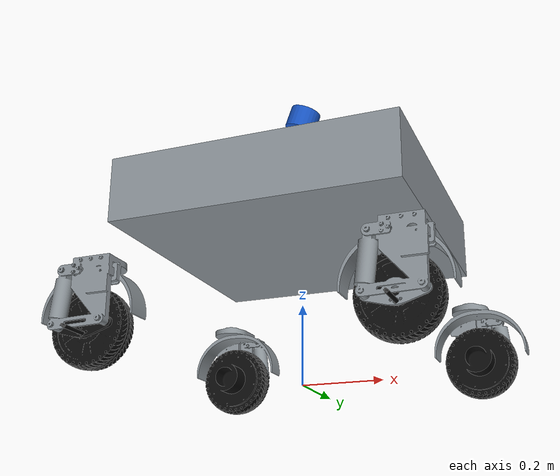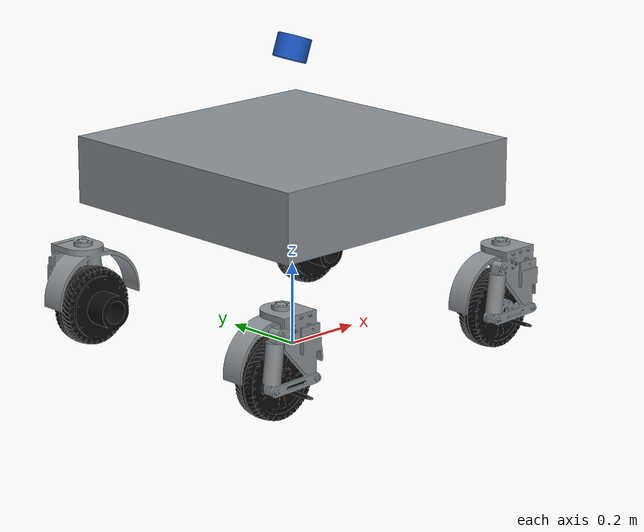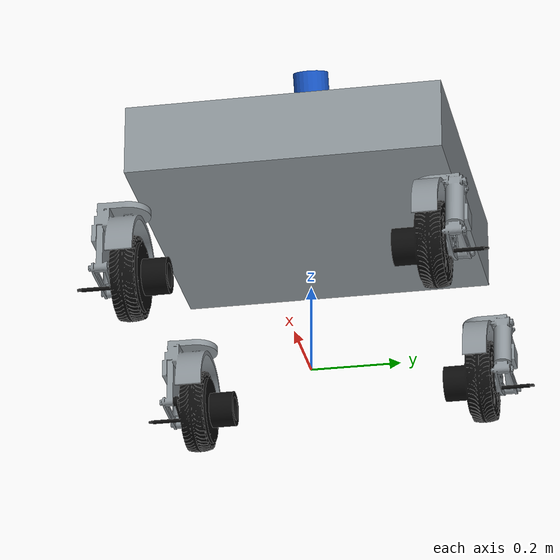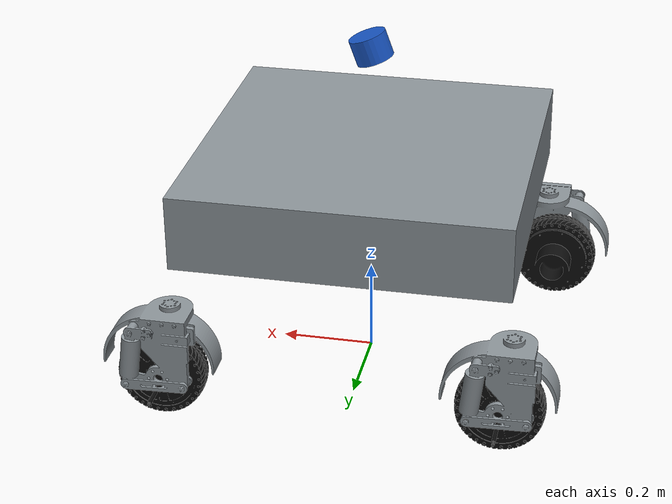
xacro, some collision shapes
<?xml version="1.0"?>
<robot xmlns:xacro="http://www.ros.org/wiki/xacro" name="wheel_rail_chassis">

  <xacro:property name="steering_limit" value="2.88"/>
  <xacro:property name="tire_radius" value="0.0935"/>
  <xacro:property name="rail_roller_radius" value="0.075"/>

  <material name="chassis_grey"><color rgba="0.55 0.58 0.60 1.0"/></material>
  <material name="tire_black"><color rgba="0.05 0.05 0.05 1.0"/></material>
  <material name="sensor_blue"><color rgba="0.10 0.35 0.80 1.0"/></material>

  <xacro:macro name="cad_inertial" params="mass xyz ixx ixy ixz iyy iyz izz">
    <inertial>
      <origin xyz="${xyz}" rpy="0 0 0"/>
      <mass value="${mass}"/>
      <inertia ixx="${ixx}" ixy="${ixy}" ixz="${ixz}"
               iyy="${iyy}" iyz="${iyz}" izz="${izz}"/>
    </inertial>
  </xacro:macro>

  <link name="base_footprint"/>

  <link name="base_link">
    <xacro:cad_inertial mass="8.92992076" xyz="0.00201008 0.00561163 0.14922432"
      ixx="0.61681731" ixy="0.0014206" ixz="0.00123763"
      iyy="0.70750456" iyz="0.00656312" izz="1.04021882"/>
    <visual>
      <origin xyz="0 0 0" rpy="0 0 0"/>
      <geometry><mesh filename="package://wr_description/meshes/base_link.stl"/></geometry>
      <material name="chassis_grey"/>
    </visual>
    <!-- 凸基本几何体用于稳定物理仿真；高精度 STL 仅用于外观显示。 -->
    <collision>
      <origin xyz="0 0 0.17" rpy="0 0 0"/>
      <geometry><box size="0.70 0.70 0.16"/></geometry>
    </collision>
  </link>

  <joint name="base_footprint_joint" type="fixed">
    <parent link="base_footprint"/>
    <child link="base_link"/>
    <origin xyz="0 0 0.253" rpy="0 0 0"/>
  </joint>

  <xacro:macro name="swerve_module" params="
      prefix steering_mesh wheel_mesh
      steering_xyz steering_rpy
      drive_xyz drive_rpy tire_center_z tire_width roller_center_z roller_width
      steering_mass steering_com steering_ixx steering_ixy steering_ixz
      steering_iyy steering_iyz steering_izz
      wheel_mass wheel_com wheel_ixx wheel_ixy wheel_ixz wheel_iyy wheel_iyz wheel_izz">
    <link name="${prefix}_steering_link">
      <xacro:cad_inertial mass="${steering_mass}" xyz="${steering_com}"
        ixx="${steering_ixx}" ixy="${steering_ixy}" ixz="${steering_ixz}"
        iyy="${steering_iyy}" iyz="${steering_iyz}" izz="${steering_izz}"/>
      <visual>
        <origin xyz="0 0 0" rpy="0 0 0"/>
        <geometry><mesh filename="package://wr_description/meshes/${steering_mesh}"/></geometry>
        <material name="chassis_grey"/>
      </visual>
      <collision>
        <origin xyz="0 0 -0.08" rpy="0 0 0"/>
        <geometry><box size="0.18 0.10 0.16"/></geometry>
      </collision>
    </link>

    <joint name="${prefix}_steering_joint" type="revolute">
      <parent link="base_link"/>
      <child link="${prefix}_steering_link"/>
      <origin xyz="${steering_xyz}" rpy="${steering_rpy}"/>
      <axis xyz="0 0 1"/>
      <limit lower="-${steering_limit}" upper="${steering_limit}" effort="36.0" velocity="2.0"/>
      <dynamics damping="0.2" friction="0.1"/>
    </joint>

    <link name="${prefix}_wheel_link">
      <xacro:cad_inertial mass="${wheel_mass}" xyz="${wheel_com}"
        ixx="${wheel_ixx}" ixy="${wheel_ixy}" ixz="${wheel_ixz}"
        iyy="${wheel_iyy}" iyz="${wheel_iyz}" izz="${wheel_izz}"/>
      <visual>
        <origin xyz="0 0 0" rpy="0 0 0"/>
        <geometry><mesh filename="package://wr_description/meshes/${wheel_mesh}"/></geometry>
        <material name="tire_black"/>
      </visual>
      <collision name="tire_collision">
        <origin xyz="0 0 ${tire_center_z}" rpy="0 0 0"/>
        <geometry><cylinder radius="${tire_radius}" length="${tire_width}"/></geometry>
      </collision>
      <collision name="rail_roller_collision">
        <origin xyz="0 0 ${roller_center_z}" rpy="0 0 0"/>
        <geometry><cylinder radius="${rail_roller_radius}" length="${roller_width}"/></geometry>
      </collision>
    </link>

    <joint name="${prefix}_wheel_joint" type="continuous">
      <parent link="${prefix}_steering_link"/>
      <child link="${prefix}_wheel_link"/>
      <origin xyz="${drive_xyz}" rpy="${drive_rpy}"/>
      <axis xyz="0 0 1"/>
      <limit effort="30.0" velocity="30.0"/>
      <dynamics damping="0.05" friction="0.02"/>
    </joint>
  </xacro:macro>

  <xacro:swerve_module
    prefix="front_left" steering_mesh="Link_1.stl" wheel_mesh="Link_5.stl"
    steering_xyz="0.35500122 0.33499869 0.002" steering_rpy="0 0 -0.00000367"
    drive_xyz="0.02232944 -0.08710001 -0.16140002" drive_rpy="0 -1.57079633 1.57079633"
    tire_center_z="-0.0870" tire_width="0.015" roller_center_z="-0.0585" roller_width="0.006"
    steering_mass="0.71379061" steering_com="0.01759859 0.03101362 -0.07033028"
    steering_ixx="0.00218804" steering_ixy="-0.00007379" steering_ixz="0.00031499"
    steering_iyy="0.00360747" steering_iyz="0.00039126" steering_izz="0.00260771"
    wheel_mass="2.05407079" wheel_com="-0.00007909 0.00000226 -0.08396633"
    wheel_ixx="0.00451825" wheel_ixy="0.00000009" wheel_ixz="-0.00001155"
    wheel_iyy="0.00452126" wheel_iyz="0.00000033" wheel_izz="0.00706026"/>
  <xacro:swerve_module
    prefix="front_right" steering_mesh="Link_2.stl" wheel_mesh="Link_6.stl"
    steering_xyz="0.35499878 -0.33500131 0.002" steering_rpy="0 0 -0.00000367"
    drive_xyz="-0.02232944 0.03210001 -0.16140002" drive_rpy="0 1.57079633 1.57079633"
    tire_center_z="-0.0320" tire_width="0.015" roller_center_z="-0.0030" roller_width="0.007"
    steering_mass="0.71209367" steering_com="-0.01784965 -0.03097885 -0.07149148"
    steering_ixx="0.00216789" steering_ixy="-0.00007017" steering_ixz="-0.00030217"
    steering_iyy="0.00358017" steering_iyz="-0.00037835" steering_izz="0.00259920"
    wheel_mass="2.05440139" wheel_com="0.00007934 0.00000739 -0.02897195"
    wheel_ixx="0.00451985" wheel_ixy="0.00000006" wheel_ixz="0.00001156"
    wheel_iyy="0.00452167" wheel_iyz="0.00000036" wheel_izz="0.00706145"/>
  <xacro:swerve_module
    prefix="rear_left" steering_mesh="Link_3.stl" wheel_mesh="Link_7.stl"
    steering_xyz="-0.35499878 0.33500131 0.002" steering_rpy="0 0 -0.00000367"
    drive_xyz="0.02232944 -0.08710001 -0.16140002" drive_rpy="0 -1.57079633 1.57079633"
    tire_center_z="-0.0870" tire_width="0.015" roller_center_z="-0.0580" roller_width="0.007"
    steering_mass="0.71366934" steering_com="0.01790297 0.03100688 -0.07146857"
    steering_ixx="0.00217108" steering_ixy="-0.00007036" steering_ixz="0.00030279"
    steering_iyy="0.00358421" steering_iyz="0.00037733" steering_izz="0.00260104"
    wheel_mass="2.05419203" wheel_com="-0.00007918 -0.00000128 -0.08397066"
    wheel_ixx="0.00451934" wheel_ixy="0.00000008" wheel_ixz="-0.00001156"
    wheel_iyy="0.00452192" wheel_iyz="-0.00000020" wheel_izz="0.00706070"/>
  <xacro:swerve_module
    prefix="rear_right" steering_mesh="Link_4.stl" wheel_mesh="Link_8.stl"
    steering_xyz="-0.35500122 -0.33499869 0.0056183" steering_rpy="0 0 -0.00000367"
    drive_xyz="-0.02232944 -0.02960001 -0.16501833" drive_rpy="0 -1.57079633 1.57079633"
    tire_center_z="-0.0300" tire_width="0.015" roller_center_z="-0.0585" roller_width="0.006"
    steering_mass="0.67887037" steering_com="-0.01780166 -0.03091473 -0.06922127"
    steering_ixx="0.00186396" steering_ixy="-0.00006953" steering_ixz="-0.00030342"
    steering_iyy="0.00324021" steering_iyz="-0.00037285" steering_izz="0.00255369"
    wheel_mass="2.08899103" wheel_com="-0.00009966 -0.00003955 -0.03207379"
    wheel_ixx="0.00461473" wheel_ixy="0.00000094" wheel_ixz="0.00001332"
    wheel_iyy="0.00458059" wheel_iyz="0.00000388" wheel_izz="0.00710833"/>

  <!-- 传感器坐标系暂定值；实车安装后必须测量并替换 xyz/rpy。 -->
  <link name="imu_link"/>
  <joint name="imu_joint" type="fixed">
    <parent link="base_link"/><child link="imu_link"/>
    <origin xyz="0 0 0.25" rpy="0 0 0"/>
  </joint>

  <link name="mid360_link">
    <visual><geometry><cylinder radius="0.040" length="0.055"/></geometry><material name="sensor_blue"/></visual>
  </link>
  <joint name="mid360_joint" type="fixed">
    <parent link="base_link"/><child link="mid360_link"/>
    <origin xyz="0 0 0.46" rpy="0 0.349065850 0"/>
  </joint>

  <link name="front_camera_link"/>
  <joint name="front_camera_joint" type="fixed">
    <parent link="base_link"/><child link="front_camera_link"/>
    <origin xyz="0.39 0 0.31" rpy="0 0 0"/>
  </joint>

</robot>
